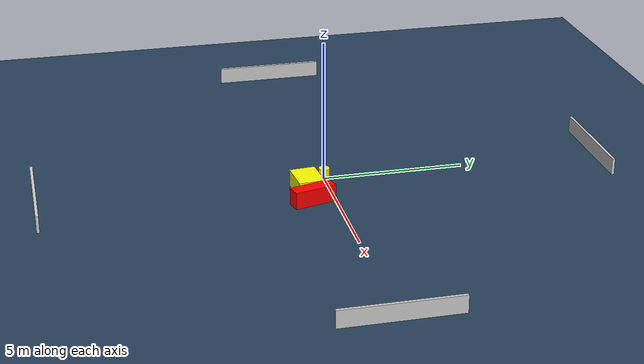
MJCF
<?xml version="1.0" ?>
<mujoco model="generated_environment">
  <option timestep="0.01" integrator="RK4" cone="elliptic"/>
  <default>
    <geom density="1"/>
  </default>
  <asset>
    <texture builtin="gradient" height="3072" name="skybox" rgb1="0.3 0.5 0.7" rgb2="0 0 0" type="skybox" width="512"/>
    <texture builtin="checker" height="300" name="groundplane" rgb1="0.2 0.3 0.4" rgb2="0.1 0.2 0.3" type="2d" width="300"/>
    <material name="groundplane" reflectance="0.2" texrepeat="5 5" texture="groundplane"/>
  </asset>
  <worldbody>
    <light dir="0 0 -1" directional="true" pos="0 0 1.5"/>
    <geom condim="3" friction="0.5 0.005 0.001" material="groundplane" name="floor" pos="0 0 0" size="0 0 0.05" type="plane"/>
    <body name="walls">
      <geom name="wall_1" condim="4" pos="-10.0 0.0 0.3" rgba="0.800000011920929 0.800000011920929 0.800000011920929 1.0" size="0.05 2.0 0.3" type="box"/>
      <geom name="wall_2" condim="4" pos="10.0 0.0 0.3" rgba="0.800000011920929 0.800000011920929 0.800000011920929 1.0" size="0.05 2.0 0.3" type="box"/>
      <geom name="wall_3" condim="4" pos="0.0 -10.0 0.3" rgba="0.800000011920929 0.800000011920929 0.800000011920929 1.0" size="2.0 0.05 0.3" type="box"/>
      <geom name="wall_4" condim="4" pos="0.0 10.0 0.3" rgba="0.800000011920929 0.800000011920929 0.800000011920929 1.0" size="2.0 0.05 0.3" type="box"/>
    </body>
    <body name="robot">
      <joint name="joint_x" type="slide" pos="0 0 0" axis="1 0 0"/>
      <joint name="joint_y" type="slide" pos="0 0 0" axis="0 1 0"/>
      <geom name="robot" type="cylinder" pos="0.0 0.0 0.2" size="0.2 0.2 0.0" mass="5.0" friction="1.0 0.005 0.0001" condim="4" rgba="1.0 1.0 0.0 1.0"/>
    </body>
    <body name="obstacle_1_movable">
      <geom name="obstacle_1_movable" condim="4" pos="0.8642779231071088 -0.7996486662173207 0.3" euler="0 0 94.89905565007163" friction="0.0 0.005 0.001" rgba="1.0 1.0 0.0 1.0" size="0.4565650872999818 0.594035570147265 0.3" type="box" mass="0.1"/>
      <joint type="free"/>
    </body>
    <body name="obstacle_2_static">
      <geom name="obstacle_2_static" condim="4" pos="1.8031425141682829 -0.8007785638941258 0.3" euler="0 0 14.581509547097236" friction="0.0 0.005 0.001" rgba="1.0 0.0 0.0 1.0" size="0.245063166199708 0.7542150488187169 0.3" type="box"/>
    </body>
  </worldbody>
  <actuator>
    <motor name="actuator_x" joint="joint_x" gear="1" ctrlrange="-1 1"/>
    <motor name="actuator_y" joint="joint_y" gear="1" ctrlrange="-1 1"/>
  </actuator>
</mujoco>
